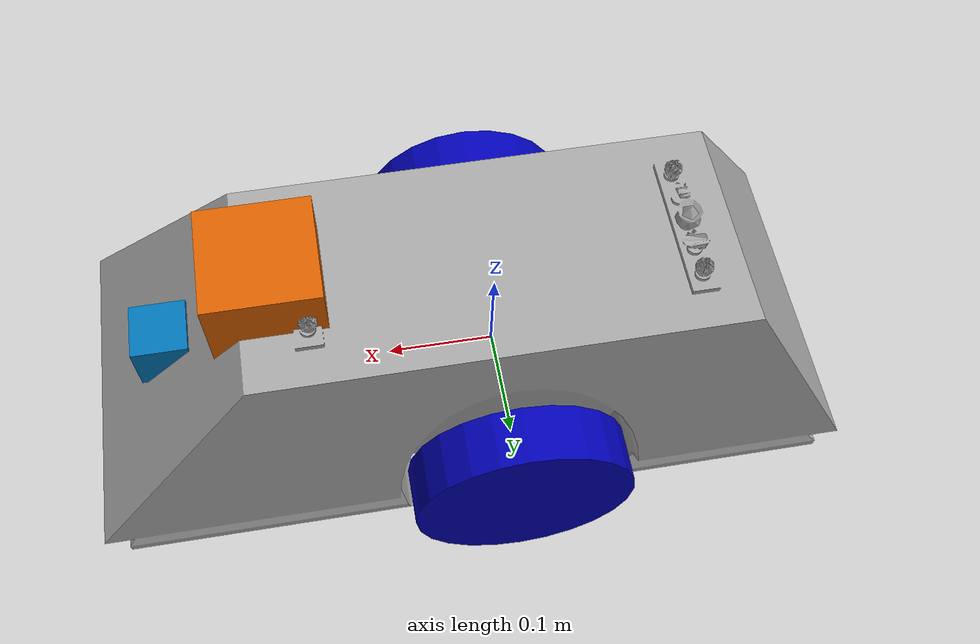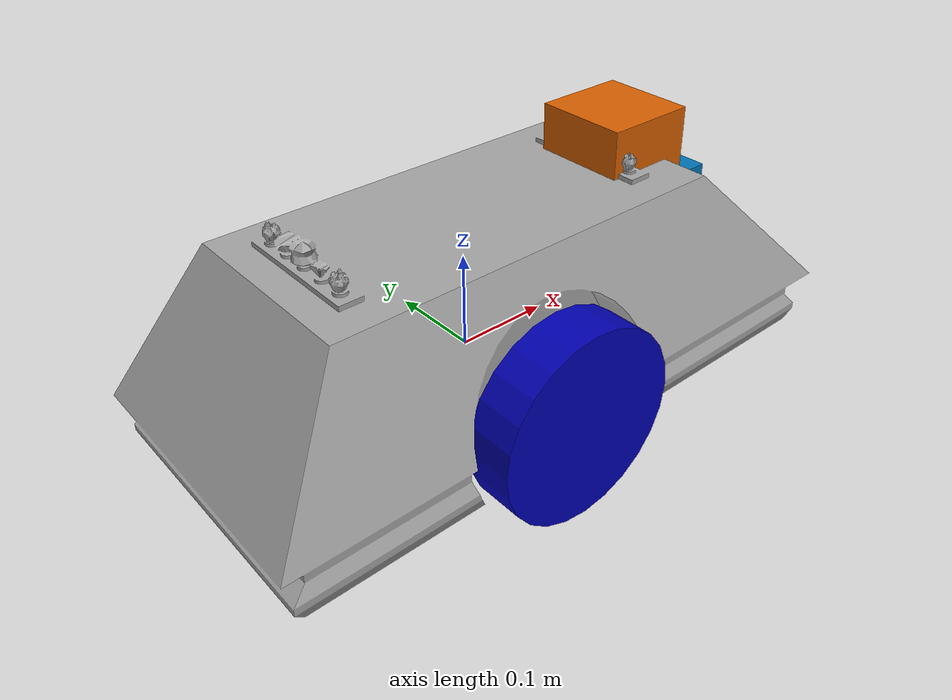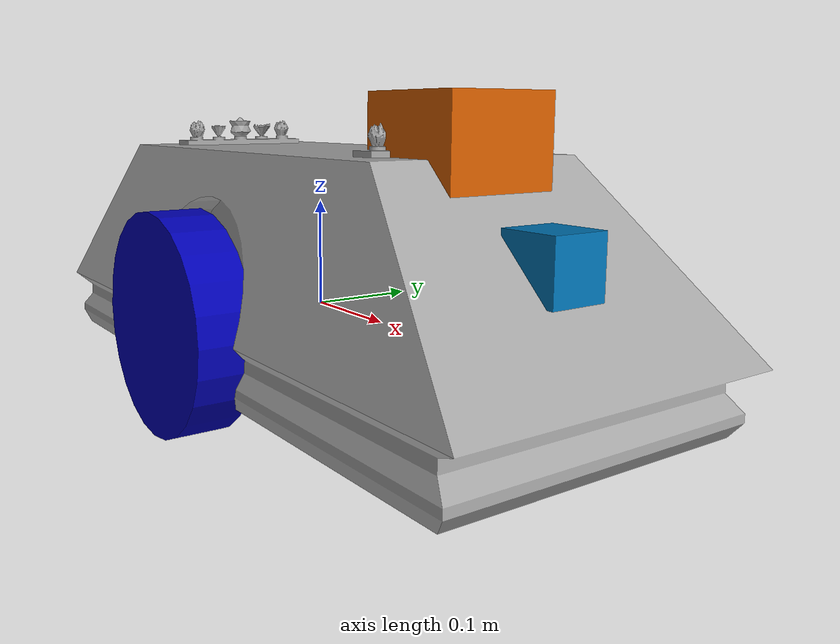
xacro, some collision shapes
<?xml version="1.0" encoding="UTF-8"?>

<robot name="lw_udacity_bot"
    xmlns:xacro="http://www.ros.org/wiki/xacro">
    <xacro:include filename="$(find udacity_bot)/urdf/lw_udacity_bot.gazebo"/>
    <xacro:include filename="$(find udacity_bot)/urdf/macros.xacro" />
    <xacro:property name="PI" value="3.1415926535897931"/>
    <xacro:property name="epsilon" value="0.0001"/>

    <xacro:property name="chassisHeight" value="0.1"/>
    <xacro:property name="chassisLength" value="0.4"/>
    <xacro:property name="chassisWidth" value="0.2"/>
    <xacro:property name="chassisMass" value="15.0"/>

    <xacro:property name="wheelWidth" value="0.05"/>
    <xacro:property name="wheelRadius" value="0.1"/>
    <xacro:property name="wheelPos" value="0.2"/>
    <xacro:property name="wheelMass" value="5"/>

    <xacro:property name="cameraSize" value="0.05"/>
    <xacro:property name="cameraMass" value="0.1"/>

    <link name="robot_footprint"></link>

    <joint name="robot_footprint_joint" type="fixed">
        <origin xyz="0 0 0" rpy="0 0 0" />
        <parent link="robot_footprint"/>
        <child link="chassis" />
    </joint>

    <joint name="left_wheel_hinge" type="continuous">
        <origin xyz="0 ${wheelWidth + chassisWidth*0.5} 0" rpy="0.0 0.0 0.0"/>
        <parent link="chassis"/>
        <child link="left_wheel"/>
        <axis xyz="0.0 1.0 0.0" rpy="0.0 0.0 0.0"/>
        <limit effort="10000.0" velocity="1000.0"/>
        <dynamics damping="1.0" friction="1.0"/>
    </joint>

    <joint name="right_wheel_hinge" type="continuous">
        <origin xyz="0 -${wheelWidth + chassisWidth*0.5} 0" rpy="0.0 0.0 0.0"/>
        <parent link="chassis"/>
        <child link="right_wheel"/>
        <axis xyz="0.0 1.0 0.0" rpy="0.0 0.0 0.0"/>
        <limit effort="10000.0" velocity="1000.0"/>
        <dynamics damping="1.0" friction="1.0"/>
    </joint>

    <joint name="camera_joint" type="fixed">
        <origin xyz="0.3 0.0 0.08" rpy="0.0 0.0 0.0"/>
        <parent link="chassis"/>
        <child link="camera"/>
    </joint>

    <joint name="hokuyo_joint" type="fixed">
        <origin xyz="0.2 0.0 0.15" rpy="0.0 0.0 0.0"/>
        <parent link="chassis"/>
        <child link="hokuyo"/>
    </joint>

    <link name='chassis'>
        <pose>0 0 ${wheelRadius} 0 0 0</pose>
        <inertial>
            <origin xyz="0.0 0.0 0.0" rpy="0.0 0.0 0.0"/>
            <mass value="0.1"/>
            <inertia ixx="0.0000001" ixy="0.0" ixz="0.0" iyy="0.0000001" iyz="0.0" izz="0.0000001"/>
        </inertial>
        <visual name="">
            <origin xyz="0.0 0.0 0.0" rpy="0.0 0.0 0.0"/>
            <geometry>
                <mesh filename="package://udacity_bot/meshes/new_mse6_tex.dae"/>
            </geometry>
        </visual>
        <collision>
            <origin xyz="0.0 0.0 0.0" rpy="0.0 0.0 0.0"/>
            <geometry>
                <box size="0.1 0.1 0.1"/>
            </geometry>
        </collision>

        <!-- wheels -->
        <collision name='back_caster_collision'>
            <origin xyz="-0.15 0 -${wheelRadius/2}" rpy="0 0 0"/>
            <geometry>
                <sphere radius="${wheelRadius/2 - epsilon}"/>
            </geometry>
        </collision>

        <visual name='back_caster_visual'>
            <origin xyz="-0.15 0 -${wheelRadius/2}" rpy="0 0 0"/>
            <geometry>
                <sphere radius="${wheelRadius/2}"/>
            </geometry>
        </visual>

        <collision name='front_caster_collision'>
            <origin xyz="0.15 0 -${wheelRadius/2}" rpy="0 0 0"/>
            <geometry>
                <sphere radius="${wheelRadius/2 - epsilon}"/>
            </geometry>
        </collision>

        <visual name='front_caster_visual'>
            <origin xyz="0.15 0 -${wheelRadius/2}" rpy="0 0 0"/>
            <geometry>
                <sphere radius="${wheelRadius/2}"/>
            </geometry>
        </visual>
    </link>

    <link name="left_wheel">
        <inertial>
            <origin xyz="0.0 0.0 0.0" rpy="0.0 1.5707 1.5707"/>
            <mass value="5.0"/>
            <inertia ixx="0.1" ixy="0.0" ixz="0.0" iyy="0.1" iyz="0.0" izz="0.1"/>
        </inertial>
        <visual name="left_wheel_visual">
            <origin xyz="0.0 0.0 0.0" rpy="0.0  1.5707 1.5707"/>
            <geometry>
                <cylinder radius="0.1" length="0.05"/>
            </geometry>
            <material name="blue">
                <color rgba="0.0 0.0 0.7 1.0"/>
            </material>
        </visual>
        <collision>
            <origin xyz="0.0 0.0 0.0" rpy="0.0  1.5707 1.5707"/>
            <geometry>
                <cylinder radius="0.1" length="0.05"/>
            </geometry>
        </collision>
    </link>

    <link name="right_wheel">
        <inertial>
            <origin xyz="0.0 0.0 0.0" rpy="0.0 1.5707 1.5707"/>
            <mass value="5.0"/>
            <inertia ixx="0.1" ixy="0.0" ixz="0.0" iyy="0.1" iyz="0.0" izz="0.1"/>
        </inertial>
        <visual name="right_wheel_visual">
            <origin xyz="0.0 0.0 0.0" rpy="0.0  1.5707 1.5707"/>
            <geometry>
                <cylinder radius="0.1" length="0.05"/>
            </geometry>
            <material name="blue">
                <color rgba="0.0 0.0 0.7 1.0"/>
            </material>
        </visual>
        <collision>
            <origin xyz="0.0 0.0 0.0" rpy="0.0  1.5707 1.5707"/>
            <geometry>
                <cylinder radius="0.1" length="0.05"/>
            </geometry>
        </collision>
    </link>

    <link name="camera">
        <inertial>
            <origin xyz="0.0 0.0 0.0" rpy="0.0 0.0 0.0"/>
            <mass value="0.1"/>
            <inertia ixx="0.0000001" ixy="0.0" ixz="0.0" iyy="0.0000001" iyz="0.0" izz="0.0000001"/>
        </inertial>
        <visual name="camera_visual">
            <origin xyz="0.0 0.0 0.0" rpy="0.0 0.0 0.0"/>
            <geometry>
                <box size="0.05 0.05 0.05"/>
            </geometry>
        </visual>
        <collision>
            <origin xyz="0.0 0.0 0.0" rpy="0.0 0.0 0.0"/>
            <geometry>
                <box size="0.05 0.05 0.05"/>
            </geometry>
        </collision>
    </link>

    <link name="hokuyo">
        <inertial>
            <origin xyz="0.0 0.0 0.0" rpy="0.0 0.0 0.0"/>
            <mass value="0.1"/>
            <inertia ixx="0.0000001" ixy="0.0" ixz="0.0" iyy="0.0000001" iyz="0.0" izz="0.0000001"/>
        </inertial>
        <visual name="">
            <origin xyz="0.0 0.0 0.0" rpy="0.0 0.0 0.0"/>
            <geometry>
                <mesh filename="package://udacity_bot/meshes/hokuyo.dae"/>
            </geometry>
        </visual>
        <collision>
            <origin xyz="0.0 0.0 0.0" rpy="0.0 0.0 0.0"/>
            <geometry>
                <box size="0.1 0.1 0.1"/>
            </geometry>
        </collision>
    </link>

</robot>
